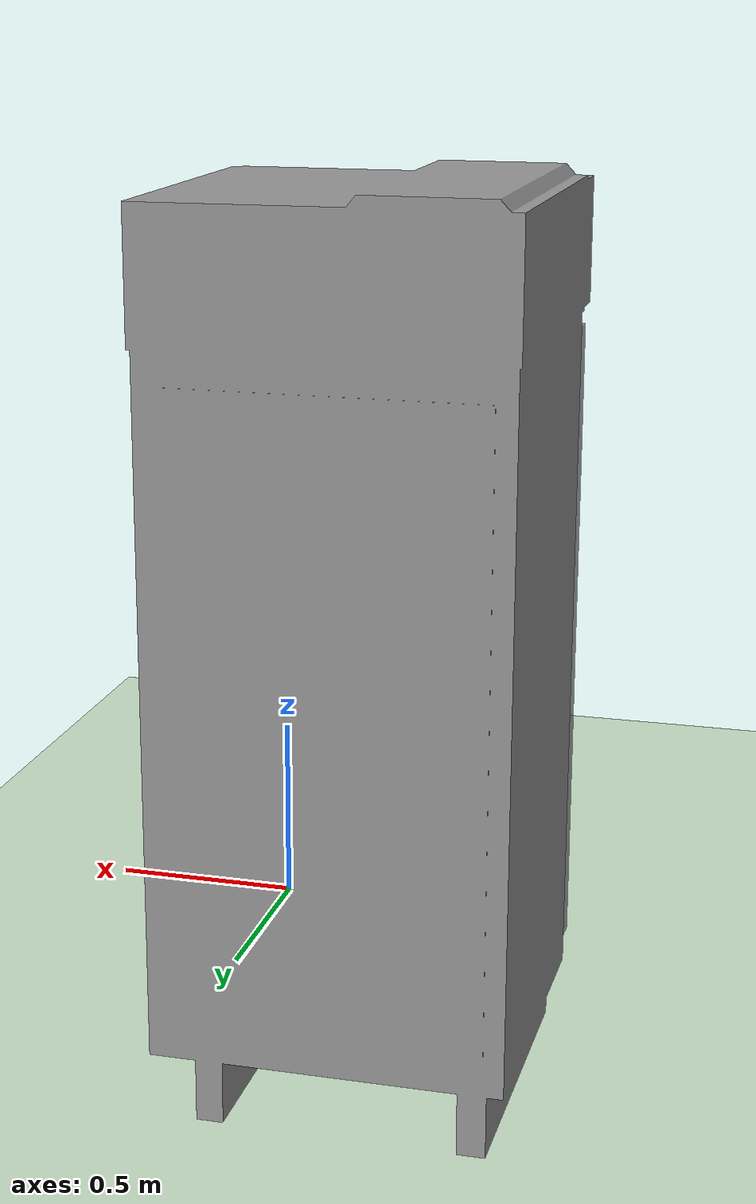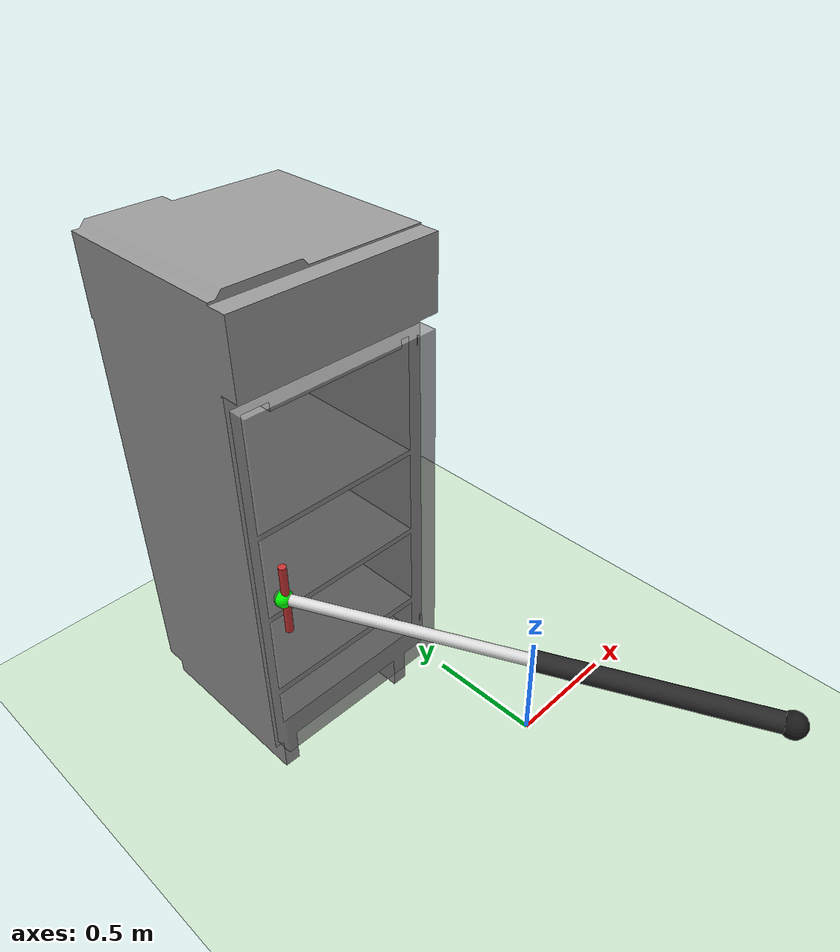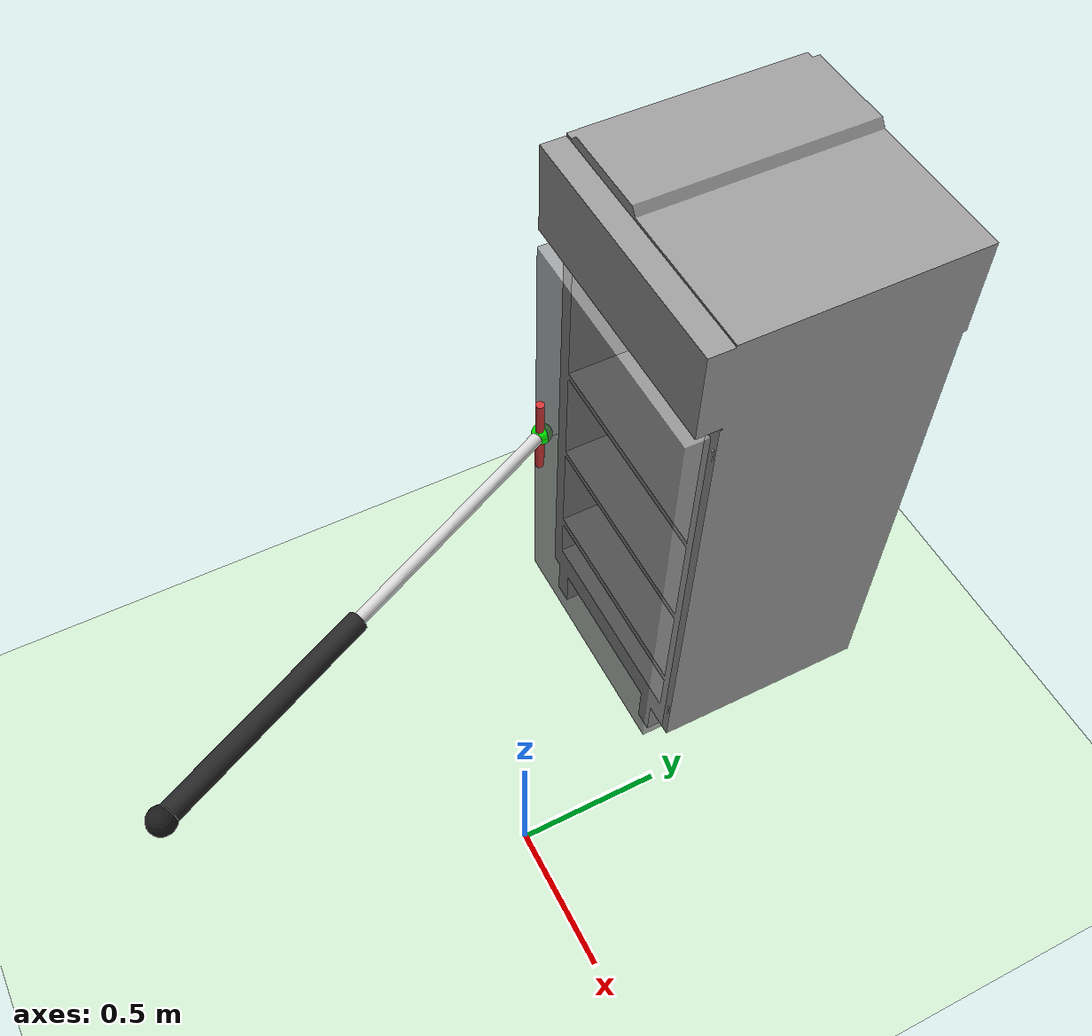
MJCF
<mujoco model="Test_studio_54_pneumatic_cylinder">

  <compiler angle="radian"/>

  <option timestep="0.002" gravity="0 0 -9.81"/>

  <asset>
    <mesh name="frigo_mesh" file="studio_54_corpo.obj"/>
    <mesh name="porta_mesh" file="studio_54_porta.obj"/>
  </asset>

  <worldbody>
    <geom name="pavimento" type="plane" size="5 5 0.1" rgba="0.8 0.9 0.8 1"/>
    <light directional="true" diffuse="0.8 0.8 0.8" specular="0.2 0.2 0.2" pos="0 0 5" dir="0 0 -1" castshadow="false"/>

    <body name="supporto_pneumatico" pos="-0.1 -1.05 1.00">
      <geom name="supporto_base" type="sphere" size="0.045" rgba="0.1 0.1 0.1 1" contype="0" conaffinity="0"/>
      <site name="snodo_fisso_cilindro" pos="0 0 0" size="0.035" rgba="1 0 0 1"/>

      <body name="canna_cilindro" pos="0 0 0" zaxis="-0.43 0.90 0">
        <joint name="snodo_base_cilindro" type="ball" damping="0.05"/>
        <inertial pos="0 0 0.40" mass="1.5" diaginertia="0.035 0.035 0.006"/>
        <geom name="canna_visual" type="cylinder" pos="0 0 0.40" size="0.035 0.40" rgba="0.15 0.15 0.15 1" contype="0" conaffinity="0"/>

        <body name="stelo_cilindro" pos="0 0 0">
          <joint name="corsa_cilindro" type="slide" axis="0 0 -1" range="0 0.74" limited="true" damping="20" frictionloss="5"/>
          <inertial pos="0 0 1.25" mass="0.8" diaginertia="0.018 0.018 0.003"/>
          <geom name="stelo_visual" type="cylinder" pos="0 0 1.25" size="0.022 0.45" rgba="0.85 0.85 0.85 1" contype="0" conaffinity="0"/>
          <site name="punta_stelo" pos="0 0 1.70" size="0.035" rgba="0 1 0 1"/>
          <geom name="snodo_mobile_visual" type="sphere" pos="0 0 1.70" size="0.035" rgba="0 1 0 1" contype="0" conaffinity="0"/>
        </body>
      </body>
    </body>

    <body name="banco_frigo" pos="-0.9 0.5 0">
      <geom type="mesh" mesh="frigo_mesh" rgba="0.6 0.6 0.6 1" contype="0" conaffinity="0"/>

      <body name="porta" pos="0 -0.01 0">
        <joint name="giunto_porta" type="hinge" pos="0.8 0.04 0" axis="0 0 1" range="0 3.491" limited="true" damping="2.0" frictionloss="5.402" stiffness="0" springref="0"/>
        <inertial pos="0.365 0.0365 0.805" mass="17" diaginertia="3.687 4.420 0.755"/>
        <geom type="mesh" mesh="porta_mesh" rgba="0.6 0.6 0.6 0.8" contype="0" conaffinity="0"/>

        <body name="maniglia_body" pos="0.07 -0.015 1.0">
          <inertial pos="0 0 0" mass="0.2" diaginertia="0.001 0.001 0.001"/>
          <geom name="maniglia" type="cylinder" size="0.015 0.15" rgba="0.8 0.2 0.2 1" contype="0" conaffinity="0"/>
          <site name="target_maniglia" pos="0 0 0" size="0.025" rgba="1 0 0 0.5"/>
        </body>
      </body>
    </body>
  </worldbody>

  <equality>
    <connect name="snodo_stelo_maniglia" site1="punta_stelo" site2="target_maniglia" solimp="0.9 0.95 0.001" solref="0.02 1"/>
  </equality>

  <actuator>
    <motor name="forza_pneumatica" joint="corsa_cilindro" gear="1" ctrllimited="true" ctrlrange="-700 700"/>
  </actuator>

</mujoco>
